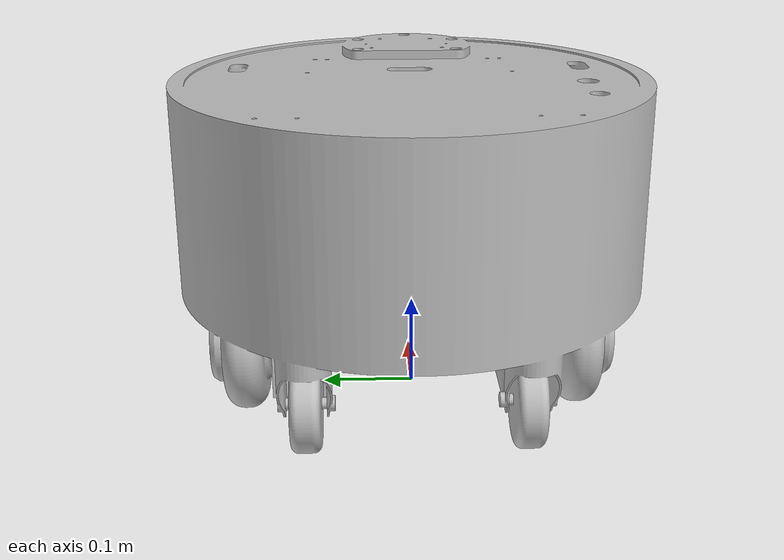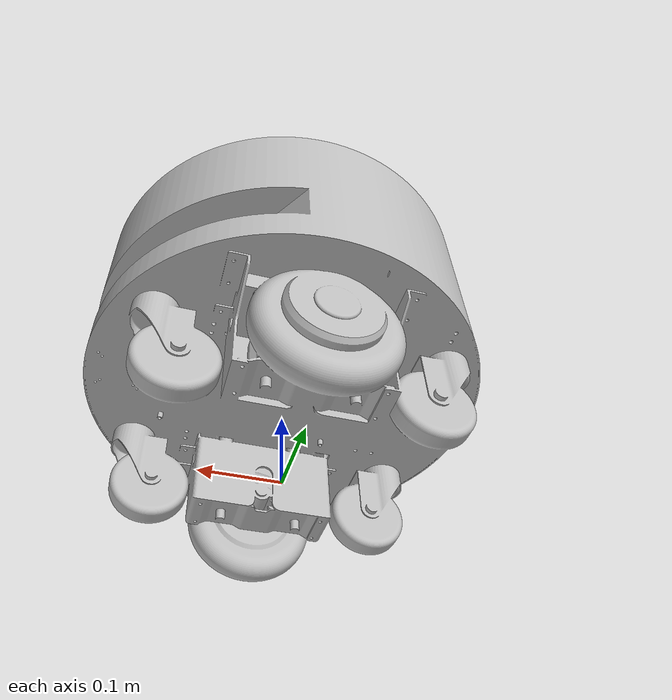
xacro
<?xml version="1.0"?>
<robot name="base" xmlns:xacro="http://www.ros.org/wiki/xacro">

    <!-- PROPERTY LIST -->
    <xacro:property name="M_PI" value="3.1415926"/>
    <xacro:property name="base_length" value="0.35"/>
        <!-- 轮子直径 -->
    <xacro:property name="wheel_radius" value="0.0775"/>
        <!-- 轮子宽度 -->
    <xacro:property name="wheel_length" value="0.04"/>

    <xacro:property name="wheel_joint_y" value="0.19"/>

    <material name="yellow">
        <color rgba="1 0.4 0 1"/>
    </material>
    <material name="black">
        <color rgba="0 0 0 0.95"/>
    </material>
    <material name="gray">
        <color rgba="0.75 0.75 0.75 1"/>
    </material>

        <link name="base_link">
            <visual>
                <origin xyz=" 0 0 0" rpy="0 0 0" />
                <geometry>
                     <mesh filename="package://yd_description/meshes/base_all.stl" scale="0.001 0.001 0.001"/>
		        </geometry>
                 <material name="gray"/>
            </visual>
            <collision>
                <origin xyz="0 0 0" rpy="0 0 0"/>
                <geometry>
                     <mesh filename="package://yd_description/meshes/base_all.stl" scale="0.001 0.001 0.001"/>
                </geometry>
            </collision>
        </link>

</robot>
